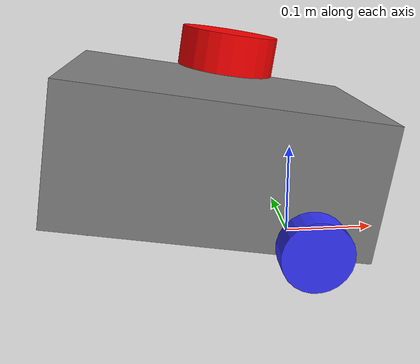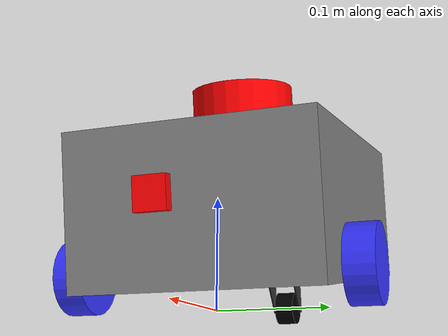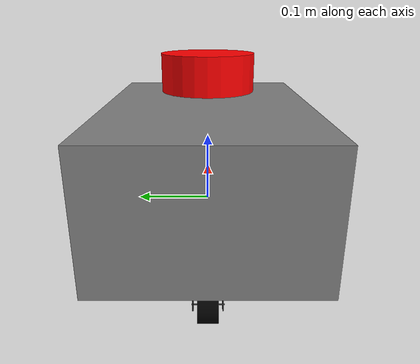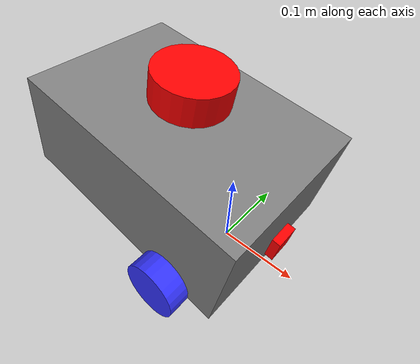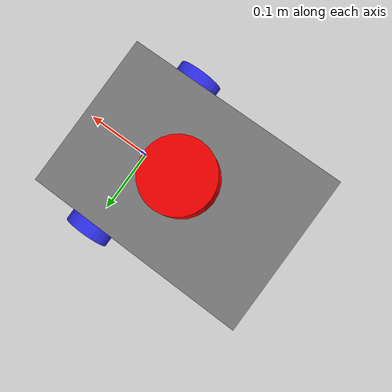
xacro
<?xml version="1.0"?>
<robot xmlns:xacro="http://www.ros.org/wiki/xacro"  name="robot">

    <xacro:arg name="use_ros2_control" default="true"/>
    <xacro:arg name="sim_mode" default="false"/>

    <xacro:include filename="real_robot_core.xacro" />

    <xacro:if value="$(arg use_ros2_control)">
        <xacro:include filename="ros2_control.xacro"/>
    </xacro:if>
    <xacro:unless value="$(arg use_ros2_control)">
        <xacro:include filename="gazebo_control.xacro"/>
    </xacro:unless>

    <xacro:include filename="lidar.xacro"/>

    <xacro:include filename="camera.xacro"/>

</robot>

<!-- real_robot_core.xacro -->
<robot xmlns:xacro="http://www.ros.org/wiki/xacro" >

    <xacro:include filename="inertial_macros.xacro"/>

    <material name="white">
        <color rgba="1.0 1.0 1.0 1.0"/>
    </material>

    <material name="orange">
        <color rgba="1.0 0.3 0.1 1.0"/>
    </material>

    <material name="blue">
        <color rgba="0.2 0.2 1.0 1.0"/>
    </material>

    <material name="black">
        <color rgba="0.0 0.0 0.0 1.0"/>
    </material>

    <material name="red">
        <color rgba="1.0 0.0 0.0 1.0"/>
    </material>

    <material name="grey">
        <color rgba="0.5 0.5 0.5 1.0"/>
    </material>

    <!-- BASE LINK-->

    <!-- Using diferential mobile robots its better to use de center of the two wheels as the base link-->
    <!-- Because all the geometry and turns(its going to be the center of rotation) will get easyer to get references from there-->
    <!-- The base_link is usually the chassis or body of a robot that is immediately attached to the ground or world reference frame. -->
    <link name="base_link"></link>

    <!-- BASE_FOOTPRINT LINK necessary for slam_toolbox-->

    <joint name="base_footprint_joint" type="fixed">
        <origin xyz="0.0 0.0 0.0" rpy="0.0 0.0 0.0"/>
        <parent link="base_link"/>
        <child link="base_footprint"/>
    </joint>

    <link name="base_footprint">
    </link>

    <!-- CHASIS LINK -->

    <!-- the origin of the chassis will be just behind the center of rotation-->
    <!-- as the caster wheel is higher, the box is rotated in y -->
    <!-- the mass is created based on the joint, not the link -->
    <joint name="chase_joint" type="fixed">
        <origin xyz="-0.255 0.0 0.06" rpy="0.0 0.15652 0.0"/>
        <parent link="base_link"/>
        <child link="chassis_link"/>
    </joint>

    <link name="chassis_link">
        <visual name="">
            <origin xyz="0.16 0.0 0.07" rpy="0.0 0.0 0.0"/>
            <geometry>
                <box size="0.32 0.225 0.14"/>
            </geometry>
            <material name="grey"/>
        </visual>
        <collision>
            <origin xyz="0.16 0.0 0.07" rpy="0.0 0.0 0.0"/>
            <geometry>
                <box size="0.32 0.225 0.14"/>
            </geometry>
        </collision>
        <xacro:inertial_box mass="0.5" x="0.32" y="0.225" z="0.14">
            <origin xyz="0.165 0.0 0.0" rpy="0.0 0.0 0.0"/>
        </xacro:inertial_box>
    </link>

    <gazebo reference="chassis_link">
        <material>Gazebo/Grey</material>
    </gazebo>

    <!-- LEFT WHEEL LINK -->

    <!-- continuous because it will tourn around continuously-->
    <!-- the z axis must be pointing to the horizontal and out of the robot-->
    <joint name="left_wheel_joint" type="continuous">
        <origin xyz="0.255 0.131 0.015" rpy="-${pi/2} 0.0 0.0"/>
        <parent link="chassis_link"/>
        <child link="left_wheel_link"/>
        <axis xyz="0.0 0.0 1.0"/>
    </joint>

    <link name="left_wheel_link">
        <visual name="">
            <origin xyz="0.0 0.0 0.0" rpy="0.0 0.0 0.0"/>
            <geometry>
                <cylinder radius="0.035" length="0.027"/>
            </geometry>
            <material name="blue" />
        </visual>
        <collision>
            <origin xyz="0.0 0.0 0.0" rpy="0.0 0.0 0.0"/>
            <geometry>
                <cylinder radius="0.035" length="0.027"/>
            </geometry>
        </collision>
        <xacro:inertial_cylinder mass="0.1" length="0.027" radius="0.035">
            <origin xyz="0.0 0.0 0.0" rpy="0.0 0.0 0.0"/>
        </xacro:inertial_cylinder>
    </link>

    <gazebo reference="left_wheel_link">
        <material>Gazebo/Blue</material>
    </gazebo>

    <!-- RIGHT WHEEL LINK -->

    <!-- continuous because it will tourn around continuously-->
    <!-- the z axis must be pointing to the horizontal and out of the robot-->
    <joint name="right_wheel_joint" type="continuous">
        <origin xyz="0.255 -0.131 0.015" rpy="${pi/2} 0.0 0.0"/>
        <parent link="chassis_link"/>
        <child link="right_wheel_link"/>
        <axis xyz="0.0 0.0 -1.0"/>
    </joint>

    <link name="right_wheel_link">
        <visual name="">
            <origin xyz="0.0 0.0 0.0" rpy="0.0 0.0 0.0"/>
            <geometry>
                <cylinder radius="0.035" length="0.027"/>
            </geometry>
            <material name="blue" />
        </visual>
        <collision>
            <origin xyz="0.0 0.0 0.0" rpy="0.0 0.0 0.0"/>
            <geometry>
                <cylinder radius="0.035" length="0.027"/>
            </geometry>
        </collision>
        <xacro:inertial_cylinder mass="0.1" length="0.027" radius="0.035">
            <origin xyz="0.0 0.0 0.0" rpy="0.0 0.0 0.0"/>
        </xacro:inertial_cylinder>
    </link>

    <gazebo reference="right_wheel_link">
        <material>Gazebo/Blue</material>
    </gazebo>

    <!-- CASTER WHEEL LINK -->

    <!-- fixed because of little bit of cheating-->
    <!-- the z axis must be pointing to the horizontal and out of the robot-->
    <joint name="caster_wheel_joint" type="fixed">
        <origin xyz="0.05 0.0 0.0" rpy="0.0 0.0 0.0"/>
        <parent link="chassis_link"/>
        <child link="caster_wheel_link"/>
    </joint>

    <link name="caster_wheel_link">
        <visual name="">
            <origin xyz="0.0 0.0 0.0" rpy="0.0 0.0 0.0"/>
            <geometry>
                <mesh filename="model://my_bot/meshes/caster_wheel/caster_wheel.dae" scale="0.001 0.001 0.001"/>
            </geometry>
        </visual>
        <collision>
            <origin xyz="0.0 0.0 0.0" rpy="0.0 0.0 0.0"/>
            <geometry>
                <mesh filename="model://my_bot/meshes/caster_wheel/caster_wheel.stl" scale="0.001 0.001 0.001"/>
            </geometry>
        </collision>
        <xacro:inertial_cylinder mass="0.1" length="0.018" radius="0.0175">
            <origin xyz="0.0 0.0 0.0" rpy="0.0 0.0 0.0"/>
        </xacro:inertial_cylinder>
    </link>

    <gazebo reference="caster_wheel_link">
        <mu1 value="0.0001"/>
        <mu2 value="0.0001"/>
    </gazebo>

</robot>

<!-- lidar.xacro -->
<robot xmlns:xacro="http://www.ros.org/wiki/xacro" >

    <joint name="laser_joint" type="fixed">
        <origin xyz="0.16 0.0 0.175" rpy="0.0 0.0 0.0"/>
        <parent link="chassis_link"/>
        <child link="laser_frame"/>
    </joint>

    <link name="laser_frame">
        <visual name="">
            <origin xyz="0.0 0.0 0.0" rpy="0.0 0.0 0.0"/>
            <geometry>
                <cylinder radius="0.05" length="0.04"/>
            </geometry>
            <material name="red" />
        </visual>
        <collision>
            <origin xyz="0.0 0.0 0.0" rpy="0.0 0.0 0.0"/>
            <geometry>
                <cylinder radius="0.05" length="0.04"/>
            </geometry>
        </collision>
        <xacro:inertial_cylinder mass="0.1" length="0.04" radius="0.05">
            <origin xyz="0.0 0.0 0.0" rpy="0.0 0.0 0.0"/>
        </xacro:inertial_cylinder>
    </link>

    <gazebo reference="laser_frame">
        <material>Gazebo/Red</material>

        <sensor name="laser" type="ray">
            <pose> 0 0 0 0 0 0</pose>
            <visualize>false</visualize>
            <update_rate>10</update_rate>
            <ray>
                <scan>
                    <horizontal>
                        <samples>360</samples>
                        <min_angle>-3.14</min_angle>
                        <max_angle>3.14</max_angle>
                    </horizontal>
                </scan>
                <range>
                    <min>0.3</min>
                    <max>12</max>
                    <resolution>0.01</resolution>
                </range>
            </ray>
            <plugin name="laser_controller" filename="libgazebo_ros_ray_sensor.so">
                <ros>
                    <argument>~/out:=scan</argument>
                </ros>
                <output_type>sensor_msgs/LaserScan</output_type>
                <frame_name>laser_frame</frame_name>
            </plugin>
        </sensor>
    </gazebo>

</robot>

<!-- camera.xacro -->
<robot xmlns:xacro="http://www.ros.org/wiki/xacro" >

    <joint name="camera_joint" type="fixed">
        <origin xyz="0.33 -0.0255 0.08" rpy="0.0 0.0 0.0"/>
        <parent link="chassis_link"/>
        <child link="camera_link"/>
    </joint>

    <!-- The camera is integrated on the chassis(no strick out), so there is no need of colision and inertia -->
    <!-- It is also on a fixed joint, so there is no need of inertial component -->
    <link name="camera_link">
        <visual name="">
            <origin xyz="0.0 0.0 0.0" rpy="0.0 0.0 0.0"/>
            <geometry>
                <box size="0.01 0.03 0.03"/>
            </geometry>
            <material name="red" />
        </visual>
    </link>

    <!-- Convert from standard roos coordinate (z to the up direction) to the camera standard coords (z point to the front)-->
    <joint name="camera_optical_joint" type="fixed">
        <origin xyz="0.0 0.0 0.0" rpy="${-pi/2} 0 -${pi/2}"/>
        <parent link="camera_link"/>
        <child link="camera_link_optical"/>
    </joint>

    <link name="camera_link_optical"></link>

    <gazebo reference="camera_link">
        <material>Gazebo/Red</material>
        <!-- change the type to depth instead of camera if you want a RGBD camera and the image format to B8G8R8-->
        <!-- and a min and max depth plugins params-->
        <sensor name="camera" type="camera">
            <pose> 0 0 0 0 0 0</pose>
            <visualize>true</visualize>
            <update_rate>10</update_rate>
            <camera>
                <horizontal_fov>1.089</horizontal_fov>
                <image>
                    <format>R8G8B8</format>
                    <width>640</width>
                    <height>480</height>
                </image>
                <clip>
                    <near>0.05</near>
                    <far>8.0</far>
                </clip>
            </camera>
            <plugin name="camera_controller" filename="libgazebo_ros_camera.so">
                <frame_name>camera_link_optical</frame_name>
            </plugin>
        </sensor>
    </gazebo>

</robot>
